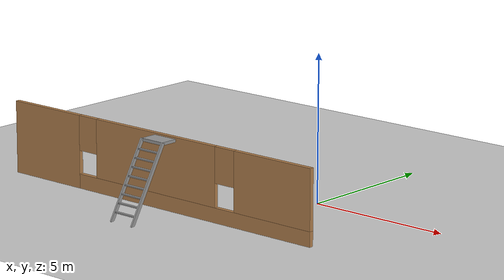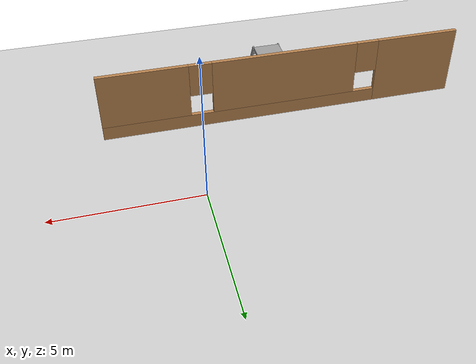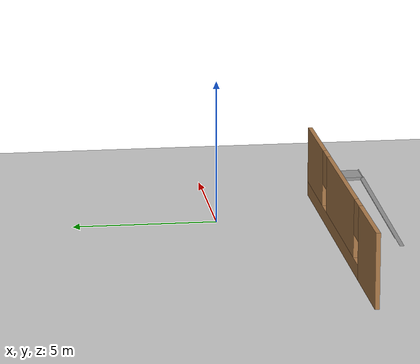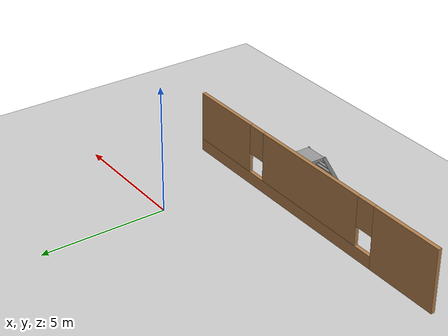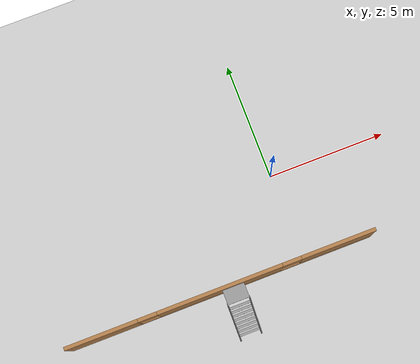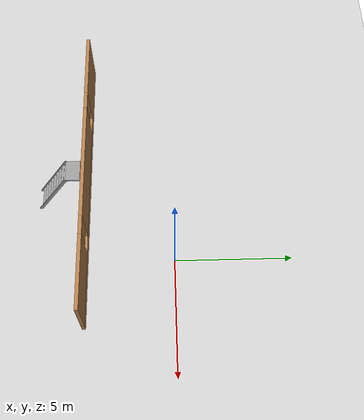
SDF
<sdf version="1.6">
 <world name="default">
  <model name="ground_plane">
   <static>1</static>
   <link name="link">
    <collision name="collision">
     <geometry><plane><normal>0 0 1</normal><size>100 100</size></plane></geometry>
     <surface>
      <contact><collide_bitmask>65535</collide_bitmask></contact>
      <friction><ode><mu>100</mu><mu2>50</mu2></ode></friction>
     </surface>
    </collision>
    <visual name="visual">
     <cast_shadows>0</cast_shadows>
     <geometry><plane><normal>0 0 1</normal><size>100 100</size></plane></geometry>
     <material>
      <script><uri>file://media/materials/scripts/gazebo.material</uri><name>Gazebo/Grey</name></script>
     </material>
    </visual>
   </link>
  </model>
  <model name="office">
   <link name="Wall_23">
    <pose>0.357662 -2.83979 0 0 -0 0</pose>
    <visual name="Wall_23_Visual_0">
     <pose>-4.98806 0 1.25 0 -0 0</pose>
     <geometry><box><size>3.02388 0.15 2.5</size></box></geometry>
     <material>
      <script><uri>file://media/materials/scripts/gazebo.material</uri><name>Gazebo/Wood</name></script>
      <ambient>0.435294 0.796078 0.67451 1</ambient>
      <shader type="pixel"/>
      <diffuse>1 1 1 1</diffuse>
      <specular>0.2 0.2 0.2 1</specular>
      <emissive>0 0 0 1</emissive>
     </material>
     <meta><layer>0</layer></meta>
    </visual>
    <visual name="Wall_23_Visual_1">
     <pose>1.51194 0 0.25 0 -0 0</pose>
     <geometry><box><size>9.97612 0.15 0.5</size></box></geometry>
     <material>
      <script><uri>file://media/materials/scripts/gazebo.material</uri><name>Gazebo/Wood</name></script>
      <ambient>0.435294 0.796078 0.67451 1</ambient>
      <shader type="pixel"/>
      <diffuse>1 1 1 1</diffuse>
      <specular>0.2 0.2 0.2 1</specular>
      <emissive>0 0 0 1</emissive>
     </material>
     <meta><layer>0</layer></meta>
    </visual>
    <visual name="Wall_23_Visual_2">
     <pose>-0.051543 0 1.5 0 -0 0</pose>
     <geometry><box><size>5.24915 0.15 2</size></box></geometry>
     <material>
      <script><uri>file://media/materials/scripts/gazebo.material</uri><name>Gazebo/Wood</name></script>
      <ambient>0.435294 0.796078 0.67451 1</ambient>
      <shader type="pixel"/>
      <diffuse>1 1 1 1</diffuse>
      <specular>0.2 0.2 0.2 1</specular>
      <emissive>0 0 0 1</emissive>
     </material>
     <meta><layer>0</layer></meta>
    </visual>
    <visual name="Wall_23_Visual_3">
     <pose>4.93652 0 1.5 0 -0 0</pose>
     <geometry><box><size>3.12697 0.15 2</size></box></geometry>
     <material>
      <script><uri>file://media/materials/scripts/gazebo.material</uri><name>Gazebo/Wood</name></script>
      <ambient>0.435294 0.796078 0.67451 1</ambient>
      <shader type="pixel"/>
      <diffuse>1 1 1 1</diffuse>
      <specular>0.2 0.2 0.2 1</specular>
      <emissive>0 0 0 1</emissive>
     </material>
     <meta><layer>0</layer></meta>
    </visual>
    <visual name="Wall_23_Visual_4">
     <pose>-3.07612 0 1.9 0 -0 0</pose>
     <geometry><box><size>0.8 0.15 1.2</size></box></geometry>
     <material>
      <script><uri>file://media/materials/scripts/gazebo.material</uri><name>Gazebo/Wood</name></script>
      <ambient>0.435294 0.796078 0.67451 1</ambient>
      <shader type="pixel"/>
      <diffuse>1 1 1 1</diffuse>
      <specular>0.2 0.2 0.2 1</specular>
      <emissive>0 0 0 1</emissive>
     </material>
     <meta><layer>0</layer></meta>
    </visual>
    <visual name="Wall_23_Visual_5">
     <pose>2.97303 0 1.9 0 -0 0</pose>
     <geometry><box><size>0.8 0.15 1.2</size></box></geometry>
     <material>
      <script><uri>file://media/materials/scripts/gazebo.material</uri><name>Gazebo/Wood</name></script>
      <ambient>0.435294 0.796078 0.67451 1</ambient>
      <shader type="pixel"/>
      <diffuse>1 1 1 1</diffuse>
      <specular>0.2 0.2 0.2 1</specular>
      <emissive>0 0 0 1</emissive>
     </material>
     <meta><layer>0</layer></meta>
    </visual>
    <collision name="Wall_23_Collision_0">
     <pose>-4.98806 0 1.25 0 -0 0</pose>
     <geometry><box><size>3.02388 0.15 2.5</size></box></geometry>
     <surface>
      <friction>
       <ode><mu>1</mu><mu2>1</mu2><fdir1>0 0 0</fdir1><slip1>0</slip1><slip2>0</slip2></ode>
       <torsional>
        <coefficient>1</coefficient>
        <patch_radius>0</patch_radius>
        <surface_radius>0</surface_radius>
        <use_patch_radius>1</use_patch_radius>
        <ode><slip>0</slip></ode>
       </torsional>
      </friction>
      <bounce><restitution_coefficient>0</restitution_coefficient><threshold>1e+06</threshold></bounce>
      <contact>
       <collide_without_contact>0</collide_without_contact>
       <collide_without_contact_bitmask>1</collide_without_contact_bitmask>
       <collide_bitmask>1</collide_bitmask>
       <ode>
        <soft_cfm>0</soft_cfm>
        <soft_erp>0.2</soft_erp>
        <kp>1e+13</kp>
        <kd>1</kd>
        <max_vel>0.01</max_vel>
        <min_depth>0</min_depth>
       </ode>
       <bullet>
        <split_impulse>1</split_impulse>
        <split_impulse_penetration_threshold>-0.01</split_impulse_penetration_threshold>
        <soft_cfm>0</soft_cfm>
        <soft_erp>0.2</soft_erp>
        <kp>1e+13</kp>
        <kd>1</kd>
       </bullet>
      </contact>
     </surface>
    </collision>
    <collision name="Wall_23_Collision_1">
     <pose>1.51194 0 0.25 0 -0 0</pose>
     <geometry><box><size>9.97612 0.15 0.5</size></box></geometry>
     <surface>
      <friction>
       <ode><mu>1</mu><mu2>1</mu2><fdir1>0 0 0</fdir1><slip1>0</slip1><slip2>0</slip2></ode>
       <torsional>
        <coefficient>1</coefficient>
        <patch_radius>0</patch_radius>
        <surface_radius>0</surface_radius>
        <use_patch_radius>1</use_patch_radius>
        <ode><slip>0</slip></ode>
       </torsional>
      </friction>
      <bounce><restitution_coefficient>0</restitution_coefficient><threshold>1e+06</threshold></bounce>
      <contact>
       <collide_without_contact>0</collide_without_contact>
       <collide_without_contact_bitmask>1</collide_without_contact_bitmask>
       <collide_bitmask>1</collide_bitmask>
       <ode>
        <soft_cfm>0</soft_cfm>
        <soft_erp>0.2</soft_erp>
        <kp>1e+13</kp>
        <kd>1</kd>
        <max_vel>0.01</max_vel>
        <min_depth>0</min_depth>
       </ode>
       <bullet>
        <split_impulse>1</split_impulse>
        <split_impulse_penetration_threshold>-0.01</split_impulse_penetration_threshold>
        <soft_cfm>0</soft_cfm>
        <soft_erp>0.2</soft_erp>
        <kp>1e+13</kp>
        <kd>1</kd>
       </bullet>
      </contact>
     </surface>
    </collision>
    <collision name="Wall_23_Collision_2">
     <pose>-0.051543 0 1.5 0 -0 0</pose>
     <geometry><box><size>5.24915 0.15 2</size></box></geometry>
     <surface>
      <friction>
       <ode><mu>1</mu><mu2>1</mu2><fdir1>0 0 0</fdir1><slip1>0</slip1><slip2>0</slip2></ode>
       <torsional>
        <coefficient>1</coefficient>
        <patch_radius>0</patch_radius>
        <surface_radius>0</surface_radius>
        <use_patch_radius>1</use_patch_radius>
        <ode><slip>0</slip></ode>
       </torsional>
      </friction>
      <bounce><restitution_coefficient>0</restitution_coefficient><threshold>1e+06</threshold></bounce>
      <contact>
       <collide_without_contact>0</collide_without_contact>
       <collide_without_contact_bitmask>1</collide_without_contact_bitmask>
       <collide_bitmask>1</collide_bitmask>
       <ode>
        <soft_cfm>0</soft_cfm>
        <soft_erp>0.2</soft_erp>
        <kp>1e+13</kp>
        <kd>1</kd>
        <max_vel>0.01</max_vel>
        <min_depth>0</min_depth>
       </ode>
       <bullet>
        <split_impulse>1</split_impulse>
        <split_impulse_penetration_threshold>-0.01</split_impulse_penetration_threshold>
        <soft_cfm>0</soft_cfm>
        <soft_erp>0.2</soft_erp>
        <kp>1e+13</kp>
        <kd>1</kd>
       </bullet>
      </contact>
     </surface>
    </collision>
    <collision name="Wall_23_Collision_3">
     <pose>4.93652 0 1.5 0 -0 0</pose>
     <geometry><box><size>3.12697 0.15 2</size></box></geometry>
     <surface>
      <friction>
       <ode><mu>1</mu><mu2>1</mu2><fdir1>0 0 0</fdir1><slip1>0</slip1><slip2>0</slip2></ode>
       <torsional>
        <coefficient>1</coefficient>
        <patch_radius>0</patch_radius>
        <surface_radius>0</surface_radius>
        <use_patch_radius>1</use_patch_radius>
        <ode><slip>0</slip></ode>
       </torsional>
      </friction>
      <bounce><restitution_coefficient>0</restitution_coefficient><threshold>1e+06</threshold></bounce>
      <contact>
       <collide_without_contact>0</collide_without_contact>
       <collide_without_contact_bitmask>1</collide_without_contact_bitmask>
       <collide_bitmask>1</collide_bitmask>
       <ode>
        <soft_cfm>0</soft_cfm>
        <soft_erp>0.2</soft_erp>
        <kp>1e+13</kp>
        <kd>1</kd>
        <max_vel>0.01</max_vel>
        <min_depth>0</min_depth>
       </ode>
       <bullet>
        <split_impulse>1</split_impulse>
        <split_impulse_penetration_threshold>-0.01</split_impulse_penetration_threshold>
        <soft_cfm>0</soft_cfm>
        <soft_erp>0.2</soft_erp>
        <kp>1e+13</kp>
        <kd>1</kd>
       </bullet>
      </contact>
     </surface>
    </collision>
    <collision name="Wall_23_Collision_4">
     <pose>-3.07612 0 1.9 0 -0 0</pose>
     <geometry><box><size>0.8 0.15 1.2</size></box></geometry>
     <surface>
      <friction>
       <ode><mu>1</mu><mu2>1</mu2><fdir1>0 0 0</fdir1><slip1>0</slip1><slip2>0</slip2></ode>
       <torsional>
        <coefficient>1</coefficient>
        <patch_radius>0</patch_radius>
        <surface_radius>0</surface_radius>
        <use_patch_radius>1</use_patch_radius>
        <ode><slip>0</slip></ode>
       </torsional>
      </friction>
      <bounce><restitution_coefficient>0</restitution_coefficient><threshold>1e+06</threshold></bounce>
      <contact>
       <collide_without_contact>0</collide_without_contact>
       <collide_without_contact_bitmask>1</collide_without_contact_bitmask>
       <collide_bitmask>1</collide_bitmask>
       <ode>
        <soft_cfm>0</soft_cfm>
        <soft_erp>0.2</soft_erp>
        <kp>1e+13</kp>
        <kd>1</kd>
        <max_vel>0.01</max_vel>
        <min_depth>0</min_depth>
       </ode>
       <bullet>
        <split_impulse>1</split_impulse>
        <split_impulse_penetration_threshold>-0.01</split_impulse_penetration_threshold>
        <soft_cfm>0</soft_cfm>
        <soft_erp>0.2</soft_erp>
        <kp>1e+13</kp>
        <kd>1</kd>
       </bullet>
      </contact>
     </surface>
    </collision>
    <collision name="Wall_23_Collision_5">
     <pose>2.97303 0 1.9 0 -0 0</pose>
     <geometry><box><size>0.8 0.15 1.2</size></box></geometry>
     <surface>
      <friction>
       <ode><mu>1</mu><mu2>1</mu2><fdir1>0 0 0</fdir1><slip1>0</slip1><slip2>0</slip2></ode>
       <torsional>
        <coefficient>1</coefficient>
        <patch_radius>0</patch_radius>
        <surface_radius>0</surface_radius>
        <use_patch_radius>1</use_patch_radius>
        <ode><slip>0</slip></ode>
       </torsional>
      </friction>
      <bounce><restitution_coefficient>0</restitution_coefficient><threshold>1e+06</threshold></bounce>
      <contact>
       <collide_without_contact>0</collide_without_contact>
       <collide_without_contact_bitmask>1</collide_without_contact_bitmask>
       <collide_bitmask>1</collide_bitmask>
       <ode>
        <soft_cfm>0</soft_cfm>
        <soft_erp>0.2</soft_erp>
        <kp>1e+13</kp>
        <kd>1</kd>
        <max_vel>0.01</max_vel>
        <min_depth>0</min_depth>
       </ode>
       <bullet>
        <split_impulse>1</split_impulse>
        <split_impulse_penetration_threshold>-0.01</split_impulse_penetration_threshold>
        <soft_cfm>0</soft_cfm>
        <soft_erp>0.2</soft_erp>
        <kp>1e+13</kp>
        <kd>1</kd>
       </bullet>
      </contact>
     </surface>
    </collision>
   </link>
   <static>1</static>
   <pose>-3.94455 -0.92637 0 0 -0 0</pose>
  </model>
  <model name="ladder_60deg_0rails">
   <static>1</static>
   <link name="step0">
    <pose>0 0.15396 0.266667 0 -0 0</pose>
    <inertial>
     <mass>9.75482</mass>
     <inertia>
      <ixx>0.00957124</ixx>
      <iyy>0.65963</iyy>
      <izz>0.666842</izz>
      <ixy>0</ixy>
      <ixz>0</ixz>
      <iyz>0</iyz>
     </inertia>
    </inertial>
    <collision name="collision"><geometry><box><size>0.9 0.1016 0.0381</size></box></geometry></collision>
    <visual name="visual">
     <geometry><box><size>0.9 0.1016 0.0381</size></box></geometry>
     <material>
      <script><uri>file://media/materials/scripts/gazebo.material</uri><name>Gazebo/Grey</name></script>
     </material>
    </visual>
   </link>
   <link name="step1">
    <pose>0 0.30792 0.533333 0 -0 0</pose>
    <inertial>
     <mass>9.75482</mass>
     <inertia>
      <ixx>0.00957124</ixx>
      <iyy>0.65963</iyy>
      <izz>0.666842</izz>
      <ixy>0</ixy>
      <ixz>0</ixz>
      <iyz>0</iyz>
     </inertia>
    </inertial>
    <collision name="collision"><geometry><box><size>0.9 0.1016 0.0381</size></box></geometry></collision>
    <visual name="visual">
     <geometry><box><size>0.9 0.1016 0.0381</size></box></geometry>
     <material>
      <script><uri>file://media/materials/scripts/gazebo.material</uri><name>Gazebo/Grey</name></script>
     </material>
    </visual>
   </link>
   <link name="step2">
    <pose>0 0.46188 0.8 0 -0 0</pose>
    <inertial>
     <mass>9.75482</mass>
     <inertia>
      <ixx>0.00957124</ixx>
      <iyy>0.65963</iyy>
      <izz>0.666842</izz>
      <ixy>0</ixy>
      <ixz>0</ixz>
      <iyz>0</iyz>
     </inertia>
    </inertial>
    <collision name="collision"><geometry><box><size>0.9 0.1016 0.0381</size></box></geometry></collision>
    <visual name="visual">
     <geometry><box><size>0.9 0.1016 0.0381</size></box></geometry>
     <material>
      <script><uri>file://media/materials/scripts/gazebo.material</uri><name>Gazebo/Grey</name></script>
     </material>
    </visual>
   </link>
   <link name="step3">
    <pose>0 0.61584 1.06667 0 -0 0</pose>
    <inertial>
     <mass>9.75482</mass>
     <inertia>
      <ixx>0.00957124</ixx>
      <iyy>0.65963</iyy>
      <izz>0.666842</izz>
      <ixy>0</ixy>
      <ixz>0</ixz>
      <iyz>0</iyz>
     </inertia>
    </inertial>
    <collision name="collision"><geometry><box><size>0.9 0.1016 0.0381</size></box></geometry></collision>
    <visual name="visual">
     <geometry><box><size>0.9 0.1016 0.0381</size></box></geometry>
     <material>
      <script><uri>file://media/materials/scripts/gazebo.material</uri><name>Gazebo/Grey</name></script>
     </material>
    </visual>
   </link>
   <link name="step4">
    <pose>0 0.7698 1.33333 0 -0 0</pose>
    <inertial>
     <mass>9.75482</mass>
     <inertia>
      <ixx>0.00957124</ixx>
      <iyy>0.65963</iyy>
      <izz>0.666842</izz>
      <ixy>0</ixy>
      <ixz>0</ixz>
      <iyz>0</iyz>
     </inertia>
    </inertial>
    <collision name="collision"><geometry><box><size>0.9 0.1016 0.0381</size></box></geometry></collision>
    <visual name="visual">
     <geometry><box><size>0.9 0.1016 0.0381</size></box></geometry>
     <material>
      <script><uri>file://media/materials/scripts/gazebo.material</uri><name>Gazebo/Grey</name></script>
     </material>
    </visual>
   </link>
   <link name="step5">
    <pose>0 0.92376 1.6 0 -0 0</pose>
    <inertial>
     <mass>9.75482</mass>
     <inertia>
      <ixx>0.00957124</ixx>
      <iyy>0.65963</iyy>
      <izz>0.666842</izz>
      <ixy>0</ixy>
      <ixz>0</ixz>
      <iyz>0</iyz>
     </inertia>
    </inertial>
    <collision name="collision"><geometry><box><size>0.9 0.1016 0.0381</size></box></geometry></collision>
    <visual name="visual">
     <geometry><box><size>0.9 0.1016 0.0381</size></box></geometry>
     <material>
      <script><uri>file://media/materials/scripts/gazebo.material</uri><name>Gazebo/Grey</name></script>
     </material>
    </visual>
   </link>
   <link name="step6">
    <pose>0 1.07772 1.86667 0 -0 0</pose>
    <inertial>
     <mass>9.75482</mass>
     <inertia>
      <ixx>0.00957124</ixx>
      <iyy>0.65963</iyy>
      <izz>0.666842</izz>
      <ixy>0</ixy>
      <ixz>0</ixz>
      <iyz>0</iyz>
     </inertia>
    </inertial>
    <collision name="collision"><geometry><box><size>0.9 0.1016 0.0381</size></box></geometry></collision>
    <visual name="visual">
     <geometry><box><size>0.9 0.1016 0.0381</size></box></geometry>
     <material>
      <script><uri>file://media/materials/scripts/gazebo.material</uri><name>Gazebo/Grey</name></script>
     </material>
    </visual>
   </link>
   <link name="step7">
    <pose>0 1.23168 2.13333 0 -0 0</pose>
    <inertial>
     <mass>9.75482</mass>
     <inertia>
      <ixx>0.00957124</ixx>
      <iyy>0.65963</iyy>
      <izz>0.666842</izz>
      <ixy>0</ixy>
      <ixz>0</ixz>
      <iyz>0</iyz>
     </inertia>
    </inertial>
    <collision name="collision"><geometry><box><size>0.9 0.1016 0.0381</size></box></geometry></collision>
    <visual name="visual">
     <geometry><box><size>0.9 0.1016 0.0381</size></box></geometry>
     <material>
      <script><uri>file://media/materials/scripts/gazebo.material</uri><name>Gazebo/Grey</name></script>
     </material>
    </visual>
   </link>
   <link name="landing">
    <pose>0 1.68564 2.4 0 -0 0</pose>
    <inertial>
     <mass>57.6072</mass>
     <inertia><ixx>1.73518</ixx><iyy>3.89545</iyy><izz>5.6167</izz><ixy>0</ixy><ixz>0</ixz><iyz>0</iyz></inertia>
    </inertial>
    <collision name="collision"><geometry><box><size>0.9 0.6 0.1016</size></box></geometry></collision>
    <visual name="visual">
     <geometry><box><size>0.9 0.6 0.1016</size></box></geometry>
     <material>
      <script><uri>file://media/materials/scripts/gazebo.material</uri><name>Gazebo/Grey</name></script>
     </material>
    </visual>
   </link>
   <link name="left_side_wall">
    <pose>-0.45 0.69282 1.2 1.0472 -0 0</pose>
    <collision name="collision"><geometry><box><size>0.0508 2.85128 0.13</size></box></geometry></collision>
    <visual name="visual">
     <geometry><box><size>0.0508 2.85128 0.13</size></box></geometry>
     <material>
      <script><uri>file://media/materials/scripts/gazebo.material</uri><name>Gazebo/Grey</name></script>
     </material>
    </visual>
   </link>
   <link name="right_side_wall">
    <pose>0.45 0.69282 1.2 1.0472 -0 0</pose>
    <collision name="collision"><geometry><box><size>0.0508 2.85128 0.13</size></box></geometry></collision>
    <visual name="visual">
     <geometry><box><size>0.0508 2.85128 0.13</size></box></geometry>
     <material>
      <script><uri>file://media/materials/scripts/gazebo.material</uri><name>Gazebo/Grey</name></script>
     </material>
    </visual>
   </link>
   <pose>-3.11828 -5.85077 0 0 -0 0</pose>
  </model>
 </world>
</sdf>
